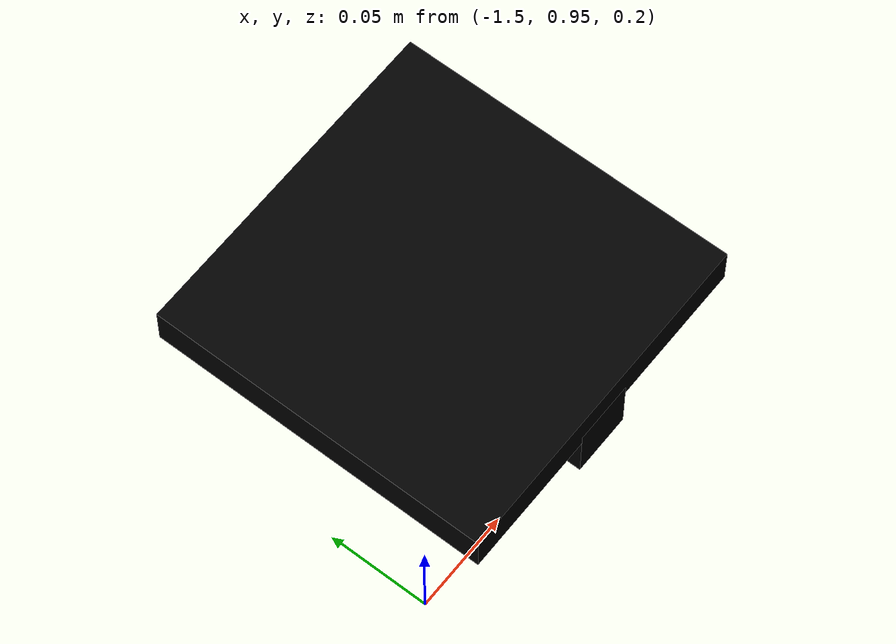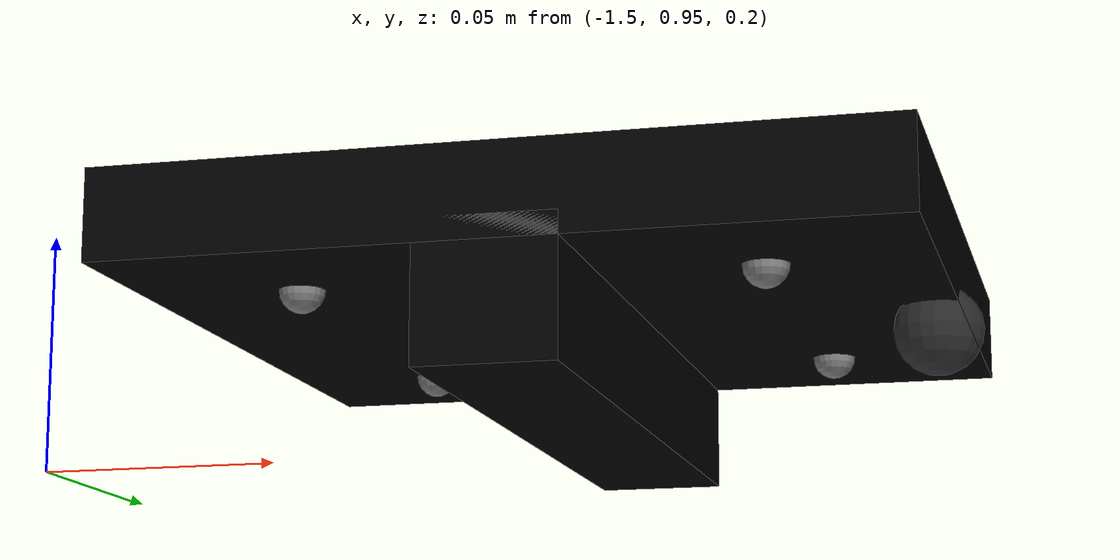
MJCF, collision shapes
<mujoco model="mini-drone-a-2">
  <!-- Compiler settings to automatically compute inertia from geometry and set mujoco_models directory -->
  <compiler inertiafromgeom="true" assetdir="../assets"/>

  <!-- Simulation options including timestep, gravity, solver iterations, integration method, air density, and air viscosity -->
  <option gravity="0 0 -9.81" iterations="50" integrator="Euler" density="1.225" viscosity="1.8e-5"/>

  <!-- Asset definitions for drone components -->
  <asset>
    <!-- Mesh for the drone body -->
    <mesh name="frame_2" file="frame.stl"/>
    <!-- Mesh for clockwise rotating propellers -->
    <mesh name="cwprop_2" file="cwprop.stl"/>
    <!-- Mesh for counter-clockwise rotating propellers -->
    <mesh name="ccwprop_2" file="ccwprop.stl"/>
  </asset>

  <!-- Default properties for joints, geometries, and motors -->
  <default>
    <!-- Joint properties: low damping to allow free rotation -->
    <joint damping="0.01"/>
    <!-- Geometric properties: friction, density, and collision margin -->
    <geom friction="1 0.5 0.5" density="1000" margin="0.01"/>
    <!-- Motor properties: control range -->
    <motor ctrlrange="0.0 1.0"/>
  </default>

  <worldbody>
    <body name="drone_2" pos="-1.4012585384440734 1.0180739209102547 .25">
      <!-- Free joint for models body to allow free movement in the environment -->
      <freejoint name="drone_2_free_joint"/>
      <inertial pos="0 0 0" mass="0.1"/>
      <site name="drone_2_sensor_site" pos="0 0 0"/>
      <geom name="drone_2_mesh" type="mesh" rgba="0.615686 0.811765 0.929412 1" mesh="frame_2" contype="0" conaffinity="0"/>

      <!-- Main collision box for the drone -->
      <geom name="drone_2_collision_1" type="box" size="0.085 0.085 0.01" rgba="0 0 0 0.2" contype="1" conaffinity="1"/>
      <!-- Additional collision box for the drone -->
      <geom name="drone_2_collision_2" type="box" pos="0 0 -0.02" size="0.015 0.085 0.015" rgba="0 0 0 0.2" contype="1" conaffinity="1"/>

      <!-- Propeller bodies and their visuals -->
      <!-- Clockwise rotating propellers -->
      <body name="front_right_prop_2" pos="0.05 -0.05 0">
        <inertial pos="0 0 -0.00580526" quat="0.5 0.5 -0.5 0.5" mass="0.01"/>
        <site name="front_right_prop_2" pos="0 0 -0.01"/>
        <joint name="front_right_prop_2" pos="0 0 0" axis="0 0 1" limited="false"/>
        <geom name="front_right_prop_2" pos="0 0 -0.005" type="mesh" rgba="0.615686 0.811765 0.929412 1" mesh="cwprop_2"/>
      </body>
      <body name="back_left_prop_2" pos="-0.05 0.05 0">
        <inertial pos="0 0 -0.00580526" quat="0.5 0.5 -0.5 0.5" mass="0.01"/>
        <site name="back_left_prop_2" pos="0 0 -0.01"/>
        <joint name="back_left_prop_2" pos="0 0 0" axis="0 0 1" limited="false"/>
        <geom name="back_left_front_2" pos="0 0 -0.005" type="mesh" rgba="0.615686 0.811765 0.929412 1" mesh="cwprop_2"/>
      </body>
      <!-- Counter-clockwise rotating propellers -->
      <body name="front_left_prop_2" pos="0.05 0.05 0">
        <inertial pos="0 0 -0.00580545" quat="0.5 0.5 -0.5 0.5" mass="0.01"/>
        <site name="front_left_prop_2" pos="0 0 -0.01"/>
        <joint name="front_left_prop_2" pos="0 0 0" axis="0 0 1" limited="false"/>
        <geom name="front_left_prop_2" pos="0 0 -0.005" type="mesh" rgba="0.615686 0.811765 0.929412 1" mesh="ccwprop_2"/>
      </body>
      <body name="back_right_prop_2" pos="-0.05 -0.05 0">
        <inertial pos="0 0 -0.00580545" quat="0.5 0.5 -0.5 0.5" mass="0.01"/>
        <site name="back_right_prop_2" pos="0 0 -0.01"/>
        <joint name="back_right_prop_2" pos="0 0 0" axis="0 0 1" limited="false"/>
        <geom name="back_right_prop_2" pos="0 0 -0.005" type="mesh" rgba="0.615686 0.811765 0.929412 1" mesh="ccwprop_2"/>
      </body>

      <site name="bullet_spawn_position_2" pos="0.08 0 -0.015" size="0.01" rgba="1 1 1 .2"/>

      <!-- Cameras (2 stereo, 1 normal) -->
      <camera name="camera2" pos="0.1 0 0" xyaxes="0 -1 0 0 0 1" fovy="60" mode="fixed"/>
      <camera name="camera2_left" pos="0.1 0.025 0" xyaxes="0 -1 0 0 0 1" fovy="60" mode="fixed"/>
      <camera name="camera2_right" pos="0.1 -0.025 0" xyaxes="0 -1 0 0 0 1" fovy="60" mode="fixed"/>
    </body>
    <body name="bullet_2" pos="0 0 0">
      <freejoint name="bullet_2"/>
      <geom name="bullet_2" type="sphere" size="0.01" rgba="0 0 0 0" contype="0" conaffinity="0"/>
    </body>
  </worldbody>

  <!-- Actuator definitions for controlling drone propellers -->
  <actuator>
    <motor name="front_left_2" site="front_left_prop_2" ctrllimited="true" ctrlrange="0.0 1.0" gear="0 0 10 0 0 1"/>
    <motor name="back_right_2" site="back_right_prop_2" ctrllimited="true" ctrlrange="0.0 1.0" gear="0 0 10 0 0 1"/>
    <motor name="front_right_2" site="front_right_prop_2" ctrllimited="true" ctrlrange="0.0 1.0" gear="0 0 10 0 0 -1"/>
    <motor name="back_left_2" site="back_left_prop_2" ctrllimited="true" ctrlrange="0.0 1.0" gear="0 0 10 0 0 -1"/>
  </actuator>

  <!-- Sensor definitions for the drone-->
  <sensor>
    <accelerometer name="accelerometer2" site="drone_2_sensor_site" noise="0.1" cutoff="10"/>
    <gyro name="gyro2" site="drone_2_sensor_site" noise="0.1" cutoff="10"/>
  </sensor>
</mujoco>
